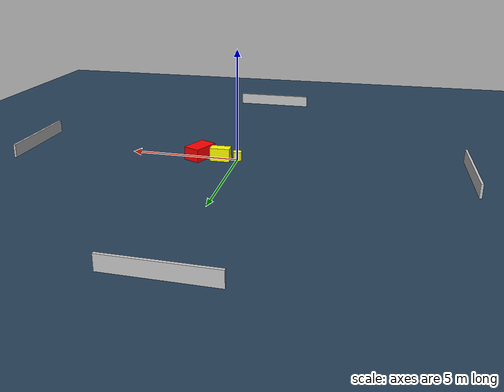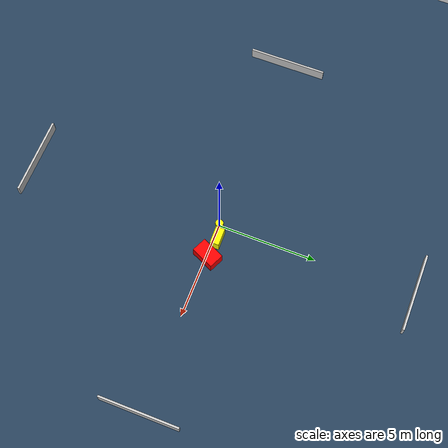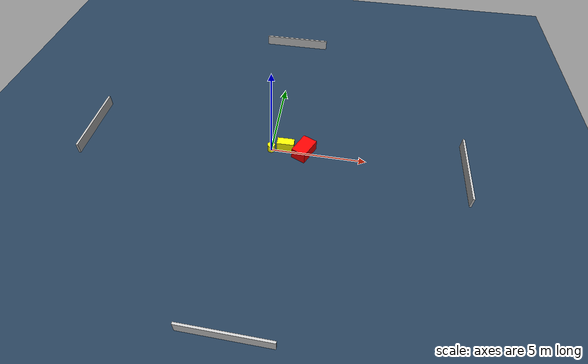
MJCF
<?xml version="1.0" ?>
<mujoco model="generated_environment">
  <option timestep="0.01" integrator="RK4" cone="elliptic"/>
  <default>
    <geom density="1"/>
  </default>
  <asset>
    <texture builtin="gradient" height="3072" name="skybox" rgb1="0.3 0.5 0.7" rgb2="0 0 0" type="skybox" width="512"/>
    <texture builtin="checker" height="300" name="groundplane" rgb1="0.2 0.3 0.4" rgb2="0.1 0.2 0.3" type="2d" width="300"/>
    <material name="groundplane" reflectance="0.2" texrepeat="5 5" texture="groundplane"/>
  </asset>
  <worldbody>
    <light dir="0 0 -1" directional="true" pos="0 0 1.5"/>
    <geom condim="3" friction="0.5 0.005 0.001" material="groundplane" name="floor" pos="0 0 0" size="0 0 0.05" type="plane"/>
    <body name="walls">
      <geom name="wall_1" condim="4" pos="-10.0 0.0 0.3" rgba="0.800000011920929 0.800000011920929 0.800000011920929 1.0" size="0.05 2.0 0.3" type="box"/>
      <geom name="wall_2" condim="4" pos="10.0 0.0 0.3" rgba="0.800000011920929 0.800000011920929 0.800000011920929 1.0" size="0.05 2.0 0.3" type="box"/>
      <geom name="wall_3" condim="4" pos="0.0 -10.0 0.3" rgba="0.800000011920929 0.800000011920929 0.800000011920929 1.0" size="2.0 0.05 0.3" type="box"/>
      <geom name="wall_4" condim="4" pos="0.0 10.0 0.3" rgba="0.800000011920929 0.800000011920929 0.800000011920929 1.0" size="2.0 0.05 0.3" type="box"/>
    </body>
    <body name="robot">
      <joint name="joint_x" type="slide" pos="0 0 0" axis="1 0 0"/>
      <joint name="joint_y" type="slide" pos="0 0 0" axis="0 1 0"/>
      <geom name="robot" type="cylinder" pos="0.0 0.0 0.2" size="0.2 0.2 0.0" mass="5.0" friction="1.0 0.005 0.0001" condim="4" rgba="1.0 1.0 0.0 1.0"/>
    </body>
    <body name="obstacle_1_movable">
      <geom name="obstacle_1_movable" condim="4" pos="0.7410150238984184 0.18337626720464126 0.3" euler="0 0 1.0996488859828712" friction="0.0 0.005 0.001" rgba="1.0 1.0 0.0 1.0" size="0.44937357433282565 0.22967355562221234 0.3" type="box" mass="0.1"/>
      <joint type="free"/>
    </body>
    <body name="obstacle_2_static">
      <geom name="obstacle_2_static" condim="4" pos="1.7424567030075977 0.07358400146141497 0.3" euler="0 0 65.70442768252123" friction="0.0 0.005 0.001" rgba="1.0 0.0 0.0 1.0" size="0.6142599815579192 0.3917918050646416 0.3" type="box"/>
    </body>
  </worldbody>
  <actuator>
    <motor name="actuator_x" joint="joint_x" gear="1" ctrlrange="-1 1"/>
    <motor name="actuator_y" joint="joint_y" gear="1" ctrlrange="-1 1"/>
  </actuator>
</mujoco>
